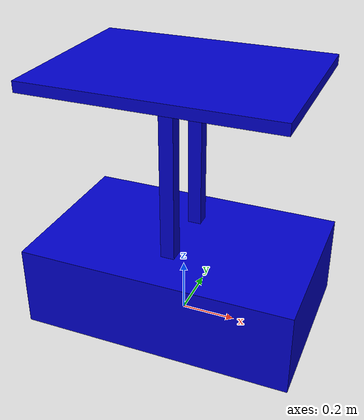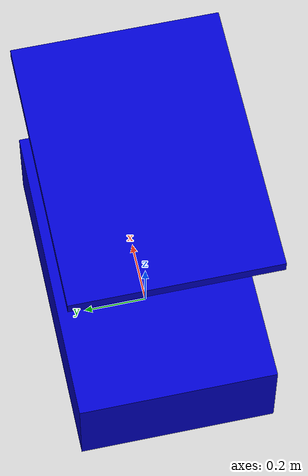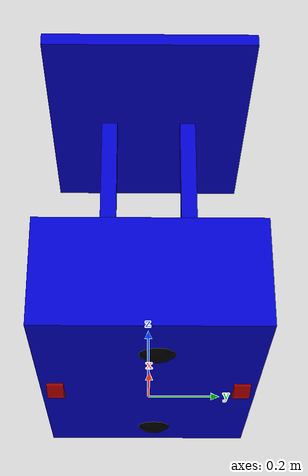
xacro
<?xml version="1.0"?>
<robot name="chuck" xmlns:xacro="http://www.ros.org/wiki/xacro">

    <xacro:include filename="properties.xacro"/>

    <xacro:include filename="common/inertia.xacro"/>
    <xacro:include filename="common/materials.xacro"/>

    <xacro:include filename="component/wheel.urdf.xacro"/>
    <xacro:include filename="component/caster.urdf.xacro"/>

    <!-- Robot footprint -->
    <link name="base_footprint">
        <inertial>
          <mass value="0.0001" />
          <origin xyz="0 0 0" />
          <inertia ixx="0.0001" ixy="0.0" ixz="0.0"
              iyy="0.0001" iyz="0.0"
              izz="0.0001" />
        </inertial>
        <visual>
            <origin xyz="0 0 0" rpy="0 0 0" />
            <geometry>
                <box size="0.001 0.001 0.001" />
            </geometry>
        </visual>
    </link>

     <gazebo reference="base_footprint">
        <material>Gazebo/Blue</material>
        <turnGravityOff>false</turnGravityOff>
      </gazebo>

    <joint name="base_footprint_joint" type="fixed">
        <origin xyz="0 0 ${base_y_offset + base_z_size/2}" rpy="0 0 0" />
        <parent link="base_footprint"/>
        <child link="base_link"/>
    </joint>

    <!-- Chassis of the robot -->
    <link name="base_link">
        <visual>
            <origin xyz="0 0 0" rpy="0 0 0"/>
            <geometry>
                <box size="${base_x_size} ${base_y_size} ${base_z_size}"/>
            </geometry>
            <material name="Blue"/>
        </visual>

        <visual>
            <origin xyz="0 ${-support_distance / 2} ${support_zero}" rpy="0 0 0"/>
            <geometry>
                <box size="${support_x_size} ${support_y_size} ${support_z_size}"/>
            </geometry>
            <material name="Blue"/>
        </visual>

        <visual>
            <origin xyz="0 ${support_distance / 2} ${support_zero}" rpy="0 0 0"/>
            <geometry>
                <box size="${support_x_size} ${support_y_size} ${support_z_size}"/>
            </geometry>
            <material name="Blue"/>
        </visual>

        <visual>
            <origin xyz="0 0 ${tray_zero}" rpy="0 0 0"/>
            <geometry>
                <box size="${tray_x_size} ${tray_y_size} ${tray_z_size}"/>
            </geometry>
            <material name="Blue"/>
        </visual>

        <collision>
            <origin xyz="0 0 0" rpy="0 0 0"/>
            <geometry>
                <box size="${base_x_size} ${base_y_size} ${base_z_size}"/>
            </geometry>
        </collision>

        <inertial>
            <mass value="${base_mass}"/>
            <origin xyz="0 0 0"/>
            <box_inertia m="${base_mass}" x="${base_x_size}" y="${base_y_size}" z="${base_z_size}"/>
        </inertial>
    </link>

    <gazebo reference="base_link">
        <material>Gazebo/Blue</material>
        <turnGravityOff>false</turnGravityOff>
    </gazebo>

    <!-- Wheels -->
    <wheel lr="left" parent="base_link" translateX="0" translateY="${-wheel_y_offset}" translateZ="${wheel_z_offset}" />
    <wheel lr="right" parent="base_link" translateX="0"  translateY="${wheel_y_offset}" translateZ="${wheel_z_offset}" />

    <!-- Castors -->
    <caster fb="front" parent="base_link" translateX="${caster_front_x_offset}" translateY="0" translateZ="${caster_z_offset}" />
    <caster fb="back" parent="base_link" translateX="${caster_back_x_offset}" translateY="0" translateZ="${caster_z_offset}" />

    <!-- Differential drive controller  -->
    <gazebo>
        <plugin name="differential_drive_controller" filename="libgazebo_ros_diff_drive.so">
            <rosDebugLevel>Debug</rosDebugLevel>
            <publishWheelTF>True</publishWheelTF>
            <publishTf>1</publishTf>
            <publishWheelJointState>true</publishWheelJointState>
            <alwaysOn>true</alwaysOn>
            <updateRate>100.0</updateRate>
            <leftJoint>left_wheel_joint</leftJoint>
            <rightJoint>right_wheel_joint</rightJoint>
            <wheelSeparation>${2*wheel_y_offset}</wheelSeparation>
            <wheelDiameter>${2*wheel_radius}</wheelDiameter>
            <broadcastTF>1</broadcastTF>
            <wheelTorque>30</wheelTorque>
            <wheelAcceleration>1.8</wheelAcceleration>
            <commandTopic>cmd_vel</commandTopic>
            <odometryFrame>odom</odometryFrame>
            <odometryTopic>odom</odometryTopic>
            <robotBaseFrame>base_link</robotBaseFrame>
        </plugin>
        <plugin name="gazebo_ros_control" filename="libgazebo_ros_control.so" />
    </gazebo>

</robot>

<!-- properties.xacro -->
<robot name="chuck" xmlns:xacro="http://www.ros.org/wiki/xacro">

    <!-- All units in m-kg-s-radians unit system -->

    <xacro:property name="M_PI" value="3.1415926535897931"/>
    <xacro:property name="M_PI_2" value="1.570796327" />
    <xacro:property name="DEG_TO_RAD" value="0.017453293" />

    <!-- Chassis -->
    <xacro:property name="base_x_size" value="0.9772396"/>
    <xacro:property name="base_y_size" value="0.619125"/>
    <xacro:property name="base_z_size" value="0.3010916"/>
    <xacro:property name="base_y_offset" value="0.01905"/>
    <xacro:property name="base_mass" value="86.1826"/>

    <!-- Tray support -->
    <xacro:property name="support_x_size" value="0.050"/>
    <xacro:property name="support_y_size" value="0.050"/>
    <xacro:property name="support_z_size" value="0.600"/>
    <xacro:property name="support_distance" value="0.254"/>

    <xacro:property name="tray_x_size" value="0.863"/>
    <xacro:property name="tray_y_size" value="0.635"/>
    <xacro:property name="tray_z_size" value="0.038"/>

    <xacro:property name="screen_x_size" value="0.020"/>
    <xacro:property name="screen_y_size" value="0.300"/>
    <xacro:property name="screen_z_size" value="0.200"/>
    <xacro:property name="screen_inclination" value="0.200"/>
    <xacro:property name="screen_mass" value="0.500"/>

    <xacro:property name="body_zero" value="0"/>
    <xacro:property name="support_zero" value="${body_zero + base_z_size / 2 + support_z_size / 2}"/>
    <xacro:property name="tray_zero" value="${support_zero + support_z_size / 2 + tray_z_size / 2}"/>

    <!-- Wheels -->
    <xacro:property name="wheel_radius" value="0.1016"/>
    <xacro:property name="wheel_thickness" value="0.047625"/>
    <xacro:property name="wheel_mass" value="2.118276"/>
    <xacro:property name="wheel_y_offset" value="0.2661285"/>
    <xacro:property name="wheel_z_offset" value="${-base_z_size/2 + wheel_radius - base_y_offset}"/>

    <xacro:property name="caster_radius" value="0.0762"/>
    <xacro:property name="caster_thickness" value="0.053975"/>
    <xacro:property name="caster_mass" value="0.453592"/>

    <xacro:property name="caster_x_size" value="0.1"/>
    <xacro:property name="caster_y_size" value="0.1"/>
    <xacro:property name="caster_z_size" value="0.2"/>

    <xacro:property name="caster_front_x_offset" value="0.2885948"/>
    <xacro:property name="caster_back_x_offset" value="-0.3564382"/>
    <xacro:property name="caster_z_offset" value="${wheel_z_offset - (wheel_radius - caster_radius) + 0.0001 }"/>

</robot>

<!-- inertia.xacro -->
<robot xmlns:xacro="http://www.ros.org/wiki/xacro">

	<!--Inertial macros for the box and cylinder. Units are kg*m^2-->
	<macro name="cylinder_inertia" params="m r h">
		<inertia ixx="${m*(3*r*r+h*h)/12}" ixy = "0" ixz = "0"
				 iyy="${m*(3*r*r+h*h)/12}" iyz = "0"
				 izz="${m*r*r/2}" />
	</macro>

	<macro name="box_inertia" params="m x y z">
		<inertia ixx="${m*(y*y+z*z)/12}" ixy = "0" ixz = "0"
				 iyy="${m*(x*x+z*z)/12}" iyz = "0"
				 izz="${m*(x*x+z*z)/12}" />
	</macro>

	<macro name="sphere_inertia" params="m r">
		<inertia ixx="${2*m*(r*r)/5}" ixy = "0" ixz = "0"
				 iyy="${2*m*(r*r)/5}" iyz = "0"
				 izz="${2*m*(r*r)/5}" />
	</macro>

</robot>

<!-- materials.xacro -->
<robot xmlns:xacro="http://www.ros.org/wiki/xacro">
  <material name="Black">
    <color rgba="0.0 0.0 0.0 1.0"/>
  </material>

  <material name="Blue">
    <color rgba="0.0 0.0 0.8 1.0"/>
  </material>

  <material name="Green">
    <color rgba="0.0 0.8 0.0 1.0"/>
  </material>

  <material name="Gray">
    <color rgba="0.7 0.7 0.7 1.0"/>
  </material>

  <material name="DarkGray">
    <color rgba="0.3 0.3 0.3 1.0"/>
  </material>

  <material name="Red">
    <color rgba="0.8 0.0 0.0 1.0"/>
  </material>

  <material name="White">
    <color rgba="1.0 1.0 1.0 1.0"/>
  </material>

  <material name="Yellow">
    <color rgba="0.8 0.8 0.0 1.0"/>
  </material>
</robot>

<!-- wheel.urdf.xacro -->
<robot name="wheel" xmlns:xacro="http://www.ros.org/wiki/xacro">

    <xacro:include filename="common/inertia.xacro"/>

    <xacro:macro name="wheel" params="lr parent translateX translateY translateZ">
        <link name="${lr}_wheel">
            <visual>
                <origin xyz="0 0 0" rpy="${M_PI/2} 0  0 " />
                <geometry>
                    <cylinder length="${wheel_thickness}" radius="${wheel_radius}"/>
                </geometry>
                <material name="Red"/>
            </visual>

            <collision>
                <origin xyz="0 0 0" rpy="${M_PI/2} 0 0 " />
                <geometry>
                    <cylinder length="${wheel_thickness}" radius="${wheel_radius}"/>
                </geometry>
            </collision>

            <inertial>
                <mass value="${wheel_mass}"/>
                <origin xyz="0 0 0"/>
                <cylinder_inertia m="${wheel_mass}" r="${wheel_radius}" h="${wheel_thickness}"/>
            </inertial>
        </link>

        <joint name="${lr}_wheel_joint" type="continuous">
            <parent link="${parent}"/>
            <child link="${lr}_wheel"/>
            <origin xyz="${translateX} ${translateY} ${translateZ}" rpy="0 0 0"/>
            <axis xyz="0 1 0" rpy="0 0 0"/>
            <limit effort="100" velocity="100"/>
            <joint_properties damping="0.0" friction="0.0"/>
        </joint>

        <transmission name="${lr}_wheel_joint_trans">
            <type>transmission_interface/SimpleTransmission</type>
            <joint name="${lr}_wheel_joint" >
                <hardwareInterface>EffortJointInterface</hardwareInterface>
            </joint>
            <actuator name="${lr}_wheel_joint_motor">
                <hardwareInterface>EffortJointInterface</hardwareInterface>
                <mechanicalReduction>1</mechanicalReduction>
            </actuator>
        </transmission>

        <gazebo reference="${lr}_wheel">
            <mu1 value="1.0"/>
            <mu2 value="1.0"/>
            <kp  value="10000000.0"/>
            <kd  value="1.0"/>
            <fdir1 value="1 0 0"/>
            <material>Gazebo/White</material>
            <turnGravityOff>false</turnGravityOff>
        </gazebo>
    </xacro:macro>
</robot>

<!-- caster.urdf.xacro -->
<robot name="caster" xmlns:xacro="http://www.ros.org/wiki/xacro">

    <xacro:include filename="common/inertia.xacro"/>

    <xacro:macro name="caster" params="fb parent translateX translateY translateZ">

        <link name="${fb}_caster">
            <visual>
                <origin xyz="0 0.02 0" rpy="${M_PI/2} 0 0" />
                <geometry>
                    <sphere radius="${caster_radius}" />
                </geometry>
                <material name="Black" />
            </visual>

            <collision>
                <origin xyz="0 0 0" rpy="${M_PI/2} 0 0" />
                <geometry>
                    <sphere radius="${caster_radius}" />
                </geometry>
            </collision>

            <inertial>
                <mass value="${caster_mass}" />
                <origin xyz="0 0 0" />
                <inertia ixx="0.001" ixy="0.0" ixz="0.0"
                     iyy="0.001" iyz="0.0"
                     izz="0.001" />
            </inertial>
        </link>

        <joint name="caster_${fb}_joint" type="fixed">
            <parent link="${parent}"/>
            <child link="${fb}_caster"/>
            <origin xyz="${translateX} ${translateY} ${translateZ}" rpy="0 0 0"/>
        </joint>

        <gazebo reference="caster_${fb}_link">
            <turnGravityOff>false</turnGravityOff>
        </gazebo>

    </xacro:macro>
</robot>
